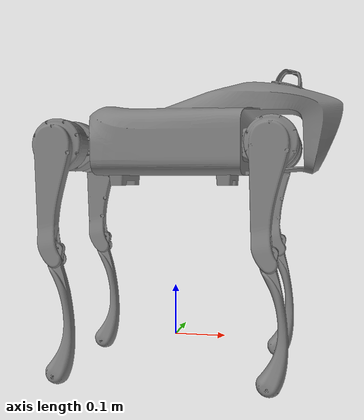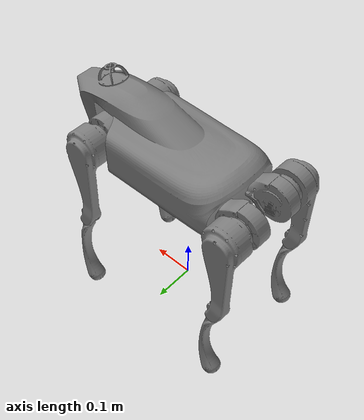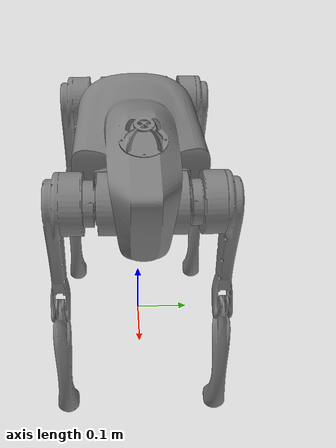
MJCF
<mujoco model="wr3">
    <compiler angle="radian" meshdir="./meshes/" autolimits="true"/>
    <size njmax="500" nconmax="100" />

    <asset>
        <mesh name="trunk_link" file="trunk_link.STL" />
        <mesh name="FL_hip_link" file="FL_hip_link.STL" />
        <mesh name="FL_thigh_link" file="FL_thigh_link.STL" />
        <mesh name="FL_calf_link" file="FL_calf_link.STL" />
        <mesh name="FR_hip_link" file="FR_hip_link.STL" />
        <mesh name="FR_thigh_link" file="FR_thigh_link.STL" />
        <mesh name="FR_calf_link" file="FR_calf_link.STL" />
        <mesh name="RL_hip_link" file="RL_hip_link.STL" />
        <mesh name="RL_thigh_link" file="RL_thigh_link.STL" />
        <mesh name="RL_calf_link" file="RL_calf_link.STL" />
        <mesh name="RR_hip_link" file="RR_hip_link.STL" />
        <mesh name="RR_thigh_link" file="RR_thigh_link.STL" />
        <mesh name="RR_calf_link" file="RR_calf_link.STL" />
    </asset>

    <worldbody>
    <body name="trunk_link" pos="-0. 0. 0.375">
        <inertial pos="0.023376 0.001413 0.010474" quat="0 0 0 1" mass="8.028" diaginertia="0.034 0.107105 0.115227"/>
        <freejoint/>
        <geom type="mesh" contype="0" conaffinity="0" group="1" mesh="trunk_link" />
        <geom type="mesh" mesh="trunk_link" />
        <body name="FL_hip_link" pos="0.135 0.05 0">
            <inertial pos="0.057196 0.003387 -8.5e-05" quat="0.512282 0.516274 0.485122 0.485474" mass="0.838" diaginertia="0.00104664 0.000737277 0.00058853" />
            <joint name="FL_hip_joint" pos="0 0 0" axis="1 0 0" limited="true" range="-0.69813 0.69813" />
            <geom type="mesh" mesh="FL_hip_link" />
            <body name="FL_thigh_link" pos="0.0625 0.02 0">
                <inertial pos="-0.001565 0.046615 -0.027916" quat="0.63718 -0.0578282 0.0378488 0.76761" mass="1.059" diaginertia="0.00482696 0.00453766 0.000725459" />
                <joint name="FL_thigh_joint" pos="0 0 0" axis="0 1 0" limited="true" range="-0.66323 2.79253" />
                <geom type="mesh" mesh="FL_thigh_link" />
                <body name="FL_calf_link" pos="0 0.0652 -0.213">
                    <inertial pos="0.008159 0.000159 -0.10787" quat="0.713411 0.00272894 0.00401625 0.700729" mass="0.125" diaginertia="0.000955627 0.00094351 2.87627e-05" />
                    <joint name="FL_calf_joint" pos="0 0 0" axis="0 1 0" limited="true" range="-2.7053 -0.89012" />
                    <geom type="mesh" mesh="FL_calf_link" />
                    <body name="FL_toe_link" pos="0.0 0 -0.225">
                        <joint name="FL_toe_joint" axis="1 0 0" limited="true" range="-0.1 0.1"/>
                    </body>
                </body>
            </body>
        </body>
        <body name="FR_hip_link" pos="0.135 -0.05 0">
            <inertial pos="0.056824 -0.003763 -1.9e-05" quat="0.485952 0.48455 0.519225 0.50938" mass="0.826" diaginertia="0.00102787 0.000719354 0.000572311" />
            <joint name="FR_hip_joint" pos="0 0 0" axis="1 0 0" limited="true" range="-0.69813 0.69813" />
            <geom type="mesh" contype="0" conaffinity="0" group="1" mesh="FR_hip_link" />
            <geom type="mesh" mesh="FR_hip_link" />
            <body name="FR_thigh_link" pos="0.0625 -0.02 0">
                <inertial pos="-0.001574 -0.046573 -0.027836" quat="0.766481 0.0387532 -0.0565184 0.638601" mass="1.057" diaginertia="0.004823 0.00453234 0.000726569" />
                <joint name="FR_thigh_joint" pos="0 0 0" axis="0 1 0" limited="true" range="-0.66323 2.79253" />
                <geom type="mesh" contype="0" conaffinity="0" group="1" mesh="FR_thigh_link" />
                <geom type="mesh" mesh="FR_thigh_link" />
                <body name="FR_calf_link" pos="0 -0.0652 -0.213">
                    <inertial pos="0.00816 -0.000208 -0.10787" quat="0.406887 0.0429408 0.0196668 0.912257" mass="0.125" diaginertia="0.000642659 0.000642659 0.000642659" />
                    <joint name="FR_calf_joint" pos="0 0 0" axis="0 1 0" limited="true" range="-2.7053 -0.89012" />
                    <geom type="mesh" contype="0" conaffinity="0" group="1" mesh="FR_calf_link" />
                    <geom type="mesh" mesh="FR_calf_link" />
                    <body name="FR_toe_link" pos="0.0 0 -0.225">
                        <joint name="FR_toe_joint" axis="1 0 0" limited="true" range="-0.1 0.1"/>
                    </body>
                </body>
            </body>
        </body>
        <body name="RL_hip_link" pos="-0.135 0.05 0">
            <inertial pos="-0.056595 0.004147 8.9e-05" quat="0.477982 0.493847 0.513765 0.513511" mass="0.81" diaginertia="0.00101868 0.000704194 0.000562286" />
            <joint name="RL_hip_joint" pos="0 0 0" axis="1 0 0" limited="true" range="-0.69813 0.69813" />
            <geom type="mesh" contype="0" conaffinity="0" group="1" mesh="RL_hip_link" />
            <geom type="mesh" mesh="RL_hip_link" />
            <body name="RL_thigh_link" pos="-0.0625 0.02 0">
                <inertial pos="-0.001565 0.046615 -0.027916" quat="0.63718 -0.0578282 0.0378488 0.76761" mass="1.059" diaginertia="0.00482696 0.00453766 0.000725459" />
                <joint name="RL_thigh_joint" pos="0 0 0" axis="0 1 0" limited="true" range="-0.66323 4.50295" />
                <geom type="mesh" contype="0" conaffinity="0" group="1" mesh="RL_thigh_link" />
                <geom type="mesh" mesh="RL_thigh_link" />
                <body name="RL_calf_link" pos="0 0.0652 -0.213">
                    <inertial pos="0.008159 0.000159 -0.10787" quat="0.713411 0.00272894 0.00401625 0.700729" mass="0.125" diaginertia="0.000955627 0.00094351 2.87627e-05" />
                    <joint name="RL_calf_joint" pos="0 0 0" axis="0 1 0" limited="true" range="-2.7053 -0.89012" />
                    <geom type="mesh" contype="0" conaffinity="0" group="1" mesh="RL_calf_link" />
                    <geom type="mesh" mesh="RL_calf_link" />
                    <body name="RL_toe_link" pos="0.0 0 -0.225">
                        <joint name="RL_toe_joint" axis="1 0 0" limited="true" range="-0.1 0.1"/>
                    </body>
                </body>
            </body>
        </body>
        <body name="RR_hip_link" pos="-0.135 -0.05 0">
            <inertial pos="-0.056604 -0.004164 0.000119" quat="0.514903 0.51304 0.493934 0.477172" mass="0.81" diaginertia="0.00101888 0.000704655 0.000562932" />
            <joint name="RR_hip_joint" pos="0 0 0" axis="1 0 0" limited="true" range="-0.698132 0.698132" />
            <geom type="mesh" contype="0" conaffinity="0" group="1" mesh="RR_hip_link" />
            <geom type="mesh" mesh="RR_hip_link" />
            <body name="RR_thigh_link" pos="-0.0625 -0.02 0">
                <inertial pos="-0.001574 -0.046573 -0.027836" quat="0.766481 0.0387532 -0.0565184 0.638601" mass="1.057" diaginertia="0.004823 0.00453234 0.000726569" />
                <joint name="RR_thigh_joint" pos="0 0 0" axis="0 1 0" limited="true" range="-0.663225 4.50295" />
                <geom type="mesh" contype="0" conaffinity="0" group="1" mesh="RR_thigh_link" />
                <geom type="mesh" mesh="RR_thigh_link" />
                <body name="RR_calf_link" pos="0 -0.0652 -0.213">
                    <inertial pos="0.00816 -0.000208 -0.10787" quat="0.406887 0.0429408 0.0196668 0.912257" mass="0.125" diaginertia="0.000642659 0.000642659 0.000642659" />
                    <joint name="RR_calf_joint" pos="0 0 0" axis="0 1 0" limited="true" range="-2.7053 -0.89012" />
                    <geom type="mesh" contype="0" conaffinity="0" group="1" mesh="RR_calf_link" />
                    <geom type="mesh" mesh="RR_calf_link" />
                    <body name="RR_toe_link" pos="0.0 0 -0.225">
                        <joint name="RR_toe_joint" axis="1 0 0" limited="true" range="-0.1 0.1"/>
                    </body>
                </body>
            </body>
        </body>
    </body>
    </worldbody>

<actuator>
    <motor name="FL_hip_joint" joint="FL_hip_joint" ctrlrange="-20 20"/>
    <motor name="FL_thigh_joint" joint="FL_thigh_joint" ctrlrange="-20 20"/>
    <motor name="FL_calf_joint" joint="FL_calf_joint" ctrlrange="-20 20"/>
    <motor name="FL_toe_joint" joint="FL_toe_joint" ctrlrange="-20 20"/>
    <motor name="FR_hip_joint" joint="FR_hip_joint" ctrlrange="-20 20"/>
    <motor name="FR_thigh_joint" joint="FR_thigh_joint" ctrlrange="-20 20"/>
    <motor name="FR_calf_joint" joint="FR_calf_joint" ctrlrange="-20 20"/>
    <motor name="FR_toe_joint" joint="FR_toe_joint" ctrlrange="-20 20"/>

    <motor name="RL_hip_joint" joint="RL_hip_joint" ctrlrange="-20 20"/>
    <motor name="RL_thigh_joint" joint="RL_thigh_joint" ctrlrange="-20 20"/>
    <motor name="RL_calf_joint" joint="RL_calf_joint" ctrlrange="-20 20"/>
    <motor name="RL_toe_joint" joint="RL_toe_joint" ctrlrange="-20 20"/>
    <motor name="RR_hip_joint" joint="RR_hip_joint" ctrlrange="-20 20"/>
    <motor name="RR_thigh_joint" joint="RR_thigh_joint" ctrlrange="-20 20"/>
    <motor name="RR_calf_joint" joint="RR_calf_joint" ctrlrange="-20 20"/>
    <motor name="RR_toe_joint" joint="RR_toe_joint" ctrlrange="-20 20"/>
</actuator>

</mujoco>
